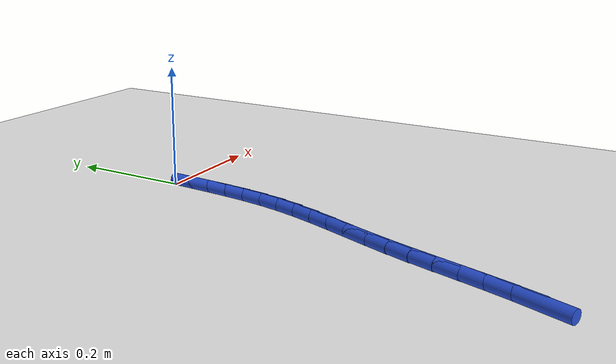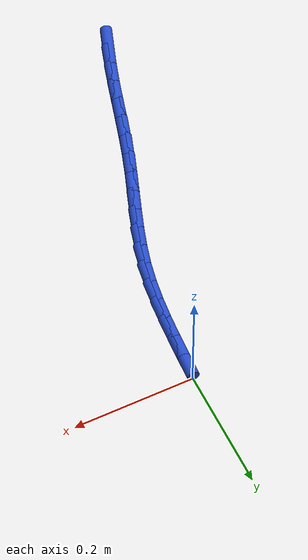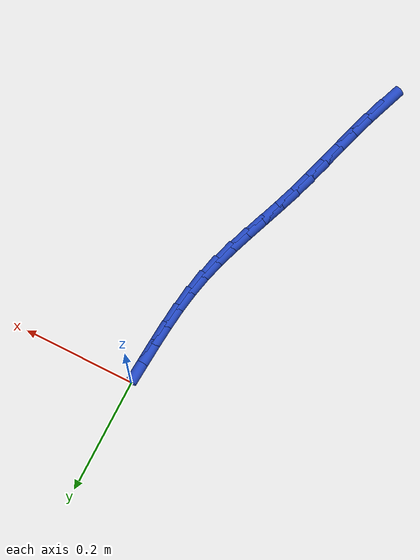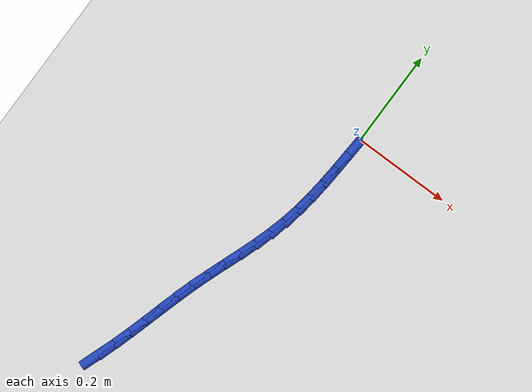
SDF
<sdf version="1.6">
 <world name="default">
  <model name="ground_plane">
   <static>1</static>
   <link name="link">
    <collision name="collision">
     <geometry><plane><normal>0 0 1</normal><size>100 100</size></plane></geometry>
     <surface><friction><ode><mu>100</mu><mu2>50</mu2></ode></friction></surface>
    </collision>
    <visual name="visual">
     <cast_shadows>0</cast_shadows>
     <geometry><plane><normal>0 0 1</normal><size>100 100</size></plane></geometry>
     <material>
      <script><uri>file://media/materials/scripts/gazebo.material</uri><name>Gazebo/WhiteGlow</name></script>
     </material>
    </visual>
   </link>
  </model>
  <model name="line">
   <link name="link_272">
    <pose>-0.16186097695481436 -0.643356568108798 0.01 0 1.57 1.2291658093124824</pose>
    <collision name="collision">
     <geometry><cylinder><radius>0.01</radius><length>0.08</length></cylinder></geometry>
    </collision>
    <visual name="visual">
     <material>
      <script><name>Gazebo/Blue</name><uri>file://media/materials/scripts/gazebo.material</uri></script>
     </material>
     <geometry><cylinder><radius>0.01</radius><length>0.08</length></cylinder></geometry>
    </visual>
   </link>
   <link name="link_273">
    <pose>-0.14923210380254479 -0.6078395531946468 0.01 0 1.57 1.2625661281596972</pose>
    <collision name="collision">
     <geometry><cylinder><radius>0.01</radius><length>0.08</length></cylinder></geometry>
    </collision>
    <visual name="visual">
     <material>
      <script><name>Gazebo/Blue</name><uri>file://media/materials/scripts/gazebo.material</uri></script>
     </material>
     <geometry><cylinder><radius>0.01</radius><length>0.08</length></cylinder></geometry>
    </visual>
   </link>
   <link name="link_274">
    <pose>-0.13769789218665887 -0.5716114209445394 0.01 0 1.57 1.2828864356209657</pose>
    <collision name="collision">
     <geometry><cylinder><radius>0.01</radius><length>0.08</length></cylinder></geometry>
    </collision>
    <visual name="visual">
     <material>
      <script><name>Gazebo/Blue</name><uri>file://media/materials/scripts/gazebo.material</uri></script>
     </material>
     <geometry><cylinder><radius>0.01</radius><length>0.08</length></cylinder></geometry>
    </visual>
   </link>
   <link name="link_275">
    <pose>-0.12684417322928906 -0.5349605348531835 0.01 0 1.57 1.290554552277375</pose>
    <collision name="collision">
     <geometry><cylinder><radius>0.01</radius><length>0.08</length></cylinder></geometry>
    </collision>
    <visual name="visual">
     <material>
      <script><name>Gazebo/Blue</name><uri>file://media/materials/scripts/gazebo.material</uri></script>
     </material>
     <geometry><cylinder><radius>0.01</radius><length>0.08</length></cylinder></geometry>
    </visual>
   </link>
   <link name="link_276">
    <pose>-0.1162567780525675 -0.4981752584152869 0.01 0 1.57 1.2857168298762212</pose>
    <collision name="collision">
     <geometry><cylinder><radius>0.01</radius><length>0.08</length></cylinder></geometry>
    </collision>
    <visual name="visual">
     <material>
      <script><name>Gazebo/Blue</name><uri>file://media/materials/scripts/gazebo.material</uri></script>
     </material>
     <geometry><cylinder><radius>0.01</radius><length>0.08</length></cylinder></geometry>
    </visual>
   </link>
   <link name="link_277">
    <pose>-0.10552153777862652 -0.4615439551255573 0.01 0 1.57 1.2682084880846267</pose>
    <collision name="collision">
     <geometry><cylinder><radius>0.01</radius><length>0.08</length></cylinder></geometry>
    </collision>
    <visual name="visual">
     <material>
      <script><name>Gazebo/Blue</name><uri>file://media/materials/scripts/gazebo.material</uri></script>
     </material>
     <geometry><cylinder><radius>0.01</radius><length>0.08</length></cylinder></geometry>
    </visual>
   </link>
   <link name="link_278">
    <pose>-0.09422428352959847 -0.4253549884787028 0.01 0 1.57 1.2404872189334983</pose>
    <collision name="collision">
     <geometry><cylinder><radius>0.01</radius><length>0.08</length></cylinder></geometry>
    </collision>
    <visual name="visual">
     <material>
      <script><name>Gazebo/Blue</name><uri>file://media/materials/scripts/gazebo.material</uri></script>
     </material>
     <geometry><cylinder><radius>0.01</radius><length>0.08</length></cylinder></geometry>
    </visual>
   </link>
   <link name="link_279">
    <pose>-0.08204994777613749 -0.3898478694557089 0.01 0 1.57 1.2208519438856922</pose>
    <collision name="collision">
     <geometry><cylinder><radius>0.01</radius><length>0.08</length></cylinder></geometry>
    </collision>
    <visual name="visual">
     <material>
      <script><name>Gazebo/Blue</name><uri>file://media/materials/scripts/gazebo.material</uri></script>
     </material>
     <geometry><cylinder><radius>0.01</radius><length>0.08</length></cylinder></geometry>
    </visual>
   </link>
   <link name="link_280">
    <pose>-0.0693139140760224 -0.35495132496808113 0.01 0 1.57 1.2169772197361832</pose>
    <collision name="collision">
     <geometry><cylinder><radius>0.01</radius><length>0.08</length></cylinder></geometry>
    </collision>
    <visual name="visual">
     <material>
      <script><name>Gazebo/Blue</name><uri>file://media/materials/scripts/gazebo.material</uri></script>
     </material>
     <geometry><cylinder><radius>0.01</radius><length>0.08</length></cylinder></geometry>
    </visual>
   </link>
   <link name="link_281">
    <pose>-0.056578647041290425 -0.320472282065123 0.01 0 1.57 1.229389818289216</pose>
    <collision name="collision">
     <geometry><cylinder><radius>0.01</radius><length>0.08</length></cylinder></geometry>
    </collision>
    <visual name="visual">
     <material>
      <script><name>Gazebo/Blue</name><uri>file://media/materials/scripts/gazebo.material</uri></script>
     </material>
     <geometry><cylinder><radius>0.01</radius><length>0.08</length></cylinder></geometry>
    </visual>
   </link>
   <link name="link_282">
    <pose>-0.04440719022200768 -0.2862173824056968 0.01 0 1.57 1.2586333687370734</pose>
    <collision name="collision">
     <geometry><cylinder><radius>0.01</radius><length>0.08</length></cylinder></geometry>
    </collision>
    <visual name="visual">
     <material>
      <script><name>Gazebo/Blue</name><uri>file://media/materials/scripts/gazebo.material</uri></script>
     </material>
     <geometry><cylinder><radius>0.01</radius><length>0.08</length></cylinder></geometry>
    </visual>
   </link>
   <link name="link_283">
    <pose>-0.03336258716823982 -0.25199326764866326 0.01 0 1.57 1.3051799906353398</pose>
    <collision name="collision">
     <geometry><cylinder><radius>0.01</radius><length>0.08</length></cylinder></geometry>
    </collision>
    <visual name="visual">
     <material>
      <script><name>Gazebo/Blue</name><uri>file://media/materials/scripts/gazebo.material</uri></script>
     </material>
     <geometry><cylinder><radius>0.01</radius><length>0.08</length></cylinder></geometry>
    </visual>
   </link>
   <link name="link_284">
    <pose>-0.024007881430052513 -0.2176065794528836 0.01 0 1.57 1.3654459950010651</pose>
    <collision name="collision">
     <geometry><cylinder><radius>0.01</radius><length>0.08</length></cylinder></geometry>
    </collision>
    <visual name="visual">
     <material>
      <script><name>Gazebo/Blue</name><uri>file://media/materials/scripts/gazebo.material</uri></script>
     </material>
     <geometry><cylinder><radius>0.01</radius><length>0.08</length></cylinder></geometry>
    </visual>
   </link>
   <link name="link_285">
    <pose>-0.016773803042581522 -0.1828751656903891 0.01 0 1.57 1.4200079553105833</pose>
    <collision name="collision">
     <geometry><cylinder><radius>0.01</radius><length>0.08</length></cylinder></geometry>
    </collision>
    <visual name="visual">
     <material>
      <script><name>Gazebo/Blue</name><uri>file://media/materials/scripts/gazebo.material</uri></script>
     </material>
     <geometry><cylinder><radius>0.01</radius><length>0.08</length></cylinder></geometry>
    </visual>
   </link>
   <link name="link_286">
    <pose>-0.011425167911885237 -0.14767327342786293 0.01 0 1.57 1.4620221749156188</pose>
    <collision name="collision">
     <geometry><cylinder><radius>0.01</radius><length>0.08</length></cylinder></geometry>
    </collision>
    <visual name="visual">
     <material>
      <script><name>Gazebo/Blue</name><uri>file://media/materials/scripts/gazebo.material</uri></script>
     </material>
     <geometry><cylinder><radius>0.01</radius><length>0.08</length></cylinder></geometry>
    </visual>
   </link>
   <link name="link_287">
    <pose>-0.007517760339065587 -0.11189285353742162 0.01 0 1.57 1.4911540508031405</pose>
    <collision name="collision">
     <geometry><cylinder><radius>0.01</radius><length>0.08</length></cylinder></geometry>
    </collision>
    <visual name="visual">
     <material>
      <script><name>Gazebo/Blue</name><uri>file://media/materials/scripts/gazebo.material</uri></script>
     </material>
     <geometry><cylinder><radius>0.01</radius><length>0.08</length></cylinder></geometry>
    </visual>
   </link>
   <link name="link_288">
    <pose>-0.004607290027335919 -0.07542586320920444 0.01 0 1.57 1.507603020199556</pose>
    <collision name="collision">
     <geometry><cylinder><radius>0.01</radius><length>0.08</length></cylinder></geometry>
    </collision>
    <visual name="visual">
     <material>
      <script><name>Gazebo/Blue</name><uri>file://media/materials/scripts/gazebo.material</uri></script>
     </material>
     <geometry><cylinder><radius>0.01</radius><length>0.08</length></cylinder></geometry>
    </visual>
   </link>
   <link name="link_289">
    <pose>-0.002249466679909601 -0.038164259633350905 0.01 0 1.57 1.5119227329694171</pose>
    <collision name="collision">
     <geometry><cylinder><radius>0.01</radius><length>0.08</length></cylinder></geometry>
    </collision>
    <visual name="visual">
     <material>
      <script><name>Gazebo/Blue</name><uri>file://media/materials/scripts/gazebo.material</uri></script>
     </material>
     <geometry><cylinder><radius>0.01</radius><length>0.08</length></cylinder></geometry>
    </visual>
   </link>
  </model>
 </world>
</sdf>
